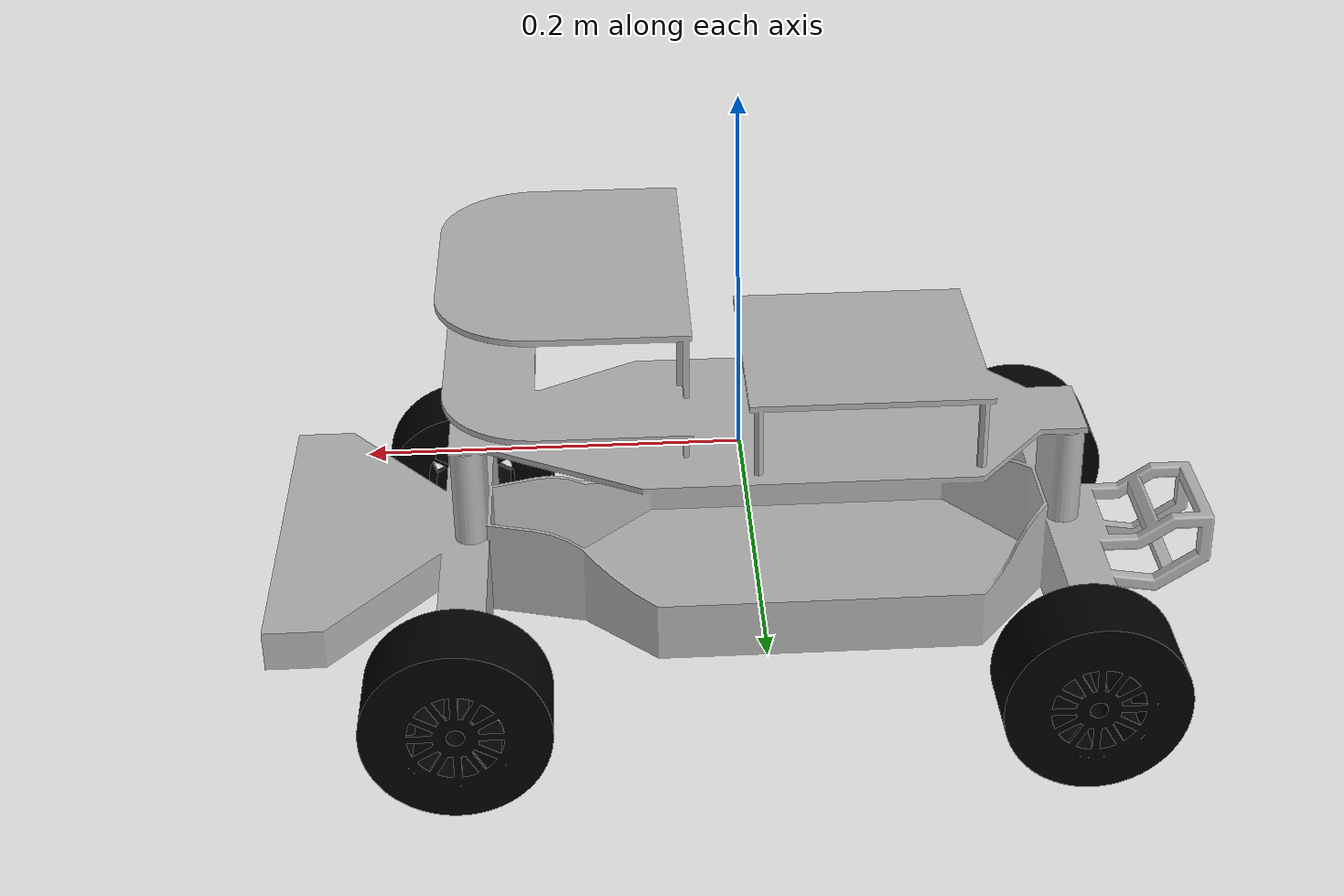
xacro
<?xml version="1.0"?>
<robot name="roscontrol"
  xmlns:xacro="http://ros.org/wiki/xacro">

  <xacro:property name="width" value="0.2" />
  <xacro:property name="leglen" value="0.6" />
  <xacro:property name="polelen" value="0.2" />
  <xacro:property name="bodylen" value="0.6" />
  <xacro:property name="baselen" value="0.4" />
  <xacro:property name="wheeldiam" value="0.07" />
  <xacro:property name="pi" value="3.1415" />
  <xacro:property name="seperationWheelDist" value=".1215" />

  <xacro:include filename="$(find avc_urdf)/urdf/properties.xacro" />
  <xacro:include filename="$(find avc_urdf)/urdf/geometries.xacro" />

  <material name="blue">
    <color rgba="0 0 0.8 1"/>
  </material>

  <material name="black">
    <color rgba="0 0 0 1"/>
  </material>

  <material name="white">
    <color rgba="1 1 1 1"/>
  </material>

  <xacro:macro name="default_inertial" params="mass">
    <inertial>
      <mass value="${mass}" />
      <inertia ixx="1.0" ixy="0.0" ixz="0.0" iyy="1.0" iyz="0.0" izz="1.0" />
    </inertial>
  </xacro:macro>

  <link name="base_link">
    <visual>
      <geometry>
        <mesh filename="file:///$(find avc_urdf)/meshes/chassis2.DAE" scale="${chassisScale} ${chassisScale} ${chassisScale}"/>
      </geometry>
      <origin rpy="1.57 0 0" xyz="${chassisMeshXoffset} ${chassisMeshYoffset} ${chassisMeshZoffset}" />
    </visual>
    <collision>
      <geometry>
        <box size = "${chassisL} ${chassisW} ${chassisH} "/>
      </geometry>
    </collision>
    <xacro:default_inertial mass="10"/>
  </link>

  <xacro:macro name="wheel" params="prefix suffix fb lr">

    <link name="${prefix}_${suffix}_wheel">
      <visual>
        <xacro:wheel_mesh_geometry side="${prefix}"/>
        <material name="black" />
      </visual>
      <collision>
        <xacro:wheel_geometry />
      </collision>
      <xacro:default_inertial mass="1"/>
    </link>

    <joint name="${prefix}_${suffix}_wheel_joint" type="continuous">
      <axis xyz="0 1 0" rpy="0 0 0" />
      <parent link="base_link"/>
      <child link="${prefix}_${suffix}_wheel"/>
      <origin xyz="${fb} ${lr} -${wheeldiam/2+.05}" rpy="0 0 0"/>
    </joint>

    <!-- This block provides the simulator (Gazebo) with information on a few additional
    physical properties. See http://gazebosim.org/tutorials/?tut=ros_urdf for more-->
    <gazebo reference="${prefix}_${suffix}_wheel">
      <mu1 value="200.0"/>
      <mu2 value="100.0"/>
      <kp value="10000000.0" />
      <kd value="1.0" />
      <material>Gazebo/Grey</material>
    </gazebo>

    <!-- This block connects the wheel joint to an actuator (motor), which informs both
    simulation and visualization of the robot -->
    <transmission name="${prefix}_${suffix}_wheel_trans">
      <type>transmission_interface/SimpleTransmission</type>
      <actuator name="${prefix}_${suffix}_wheel_motor">
        <mechanicalReduction>1</mechanicalReduction>
      </actuator>
      <joint name="${prefix}_${suffix}_wheel_joint">
        <hardwareInterface>VelocityJointInterface</hardwareInterface>
      </joint>
    </transmission>

  </xacro:macro>

  <xacro:wheel prefix="right" suffix="front" fb="${frontWheelDist}" lr="${-seperationWheelDist}"/>
  <xacro:wheel prefix="left" suffix="front" fb="${frontWheelDist}" lr="${seperationWheelDist}"/>
  <xacro:wheel prefix="right" suffix="back" fb="${backWheelDist}" lr="${-seperationWheelDist}"/>
  <xacro:wheel prefix="left" suffix="back" fb="${backWheelDist}" lr="${seperationWheelDist}"/>

  <!-- Gazebo plugin for ROS Control -->
  <gazebo>
    <plugin name="gazebo_ros_control" filename="libgazebo_ros_control.so">
      <robotNamespace>/</robotNamespace>
    </plugin>
  </gazebo>

</robot>

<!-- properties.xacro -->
<robot xmlns:xacro="http://www.ros.org/wiki/xacro" name="mintaur">

    <!-- X axis direction is forward, Y axis direction is left -->

    <!-- ______________Chassis parameters__________________________ -->
    <xacro:property name="chassisL" value="0.51" />
    <xacro:property name="chassisW" value="0.2" />
    <xacro:property name="chassisH" value="0.15" />

    <xacro:property name="chassisMass" value="1"/>
    <xacro:property name="chassisIxx" value="0.4"/>
    <xacro:property name="chassisIxy" value="0.4"/>
    <xacro:property name="chassisIyy" value="0.4"/>
    <xacro:property name="chassisIxz" value="0.0"/>
    <xacro:property name="chassisIyz" value="0.0"/>
    <xacro:property name="chassisIzz" value="0.0"/>

    <xacro:property name="chassisScale" value="0.001"/>

    <xacro:property name="chassisMeshXoffset" value="-0.125"/>
    <xacro:property name="chassisMeshYoffset" value="-0.070"/>
    <xacro:property name="chassisMeshZoffset" value="-0.085"/>

    <!-- ______________Wheel parameters__________________________ -->
    <!-- Wheel Rotation Limits> -->
    <xacro:property name="llimit" value="-0.785" />
    <xacro:property name="ulimit" value="0.785" />

    <!-- Wheel Locations -->
    <xacro:property name="rightWheelDist" value="-.1215" />
    <xacro:property name="leftWheelDist" value=".1215" />
    <xacro:property name="frontWheelDist" value="0.1535" />
    <xacro:property name="backWheelDist" value="-0.1763" />

    <xacro:property name="wheelDrop" value="-0.075" />
    <xacro:property name="wheelScale" value="0.001"/>

    <xacro:property name="wheelMeshXoffset" value="0"/>
    <xacro:property name="wheelMeshYoffset" value="0.022"/>
    <xacro:property name="wheelMeshYoffsetLeft" value="-0.022"/>
    <xacro:property name="wheelMeshZoffset" value="0"/>

    <!-- Wheel Physical Propreties-->
    <xacro:property name="wheelThickness" value="0.043" />
    <xacro:property name="wheelRadius" value="0.05"/>
    <xacro:property name="axleEffort" value="0.001"/>
    <xacro:property name="axleVelocity" value="0.5"/>

    <xacro:property name="wheelMass" value="1"/>
    <xacro:property name="wheelIxx" value="0.4"/>
    <xacro:property name="wheelIyy" value="0.4"/>
    <xacro:property name="wheelIzz" value="0.4"/>
    <xacro:property name="wheelIxy" value="0.0"/>
    <xacro:property name="wheelIxz" value="0.0"/>
    <xacro:property name="wheelIyz" value="0.0"/>

    <!-- Wheel Gazebo and Inertial Properties -->
    <xacro:property name="wheelMu1" value="200"/>
    <xacro:property name="wheelMu2" value="100"/>
    <xacro:property name="wheelKp" value="10000000.0"/>
    <xacro:property name="wheelKd" value="1.0"/>

    <!-- ______________IMU parameters__________________________ -->
    <xacro:property name="imuL" value="0.064" />
    <xacro:property name="imuW" value="0.028" />
    <xacro:property name="imuH" value="0.007" />

    <xacro:property name="imuMass" value="0.1"/>
    <xacro:property name="imuIxx" value="0.4"/>
    <xacro:property name="imuIxy" value="0.4"/>
    <xacro:property name="imuIyy" value="0.4"/>
    <xacro:property name="imuIxz" value="0.4"/>
    <xacro:property name="imuIyz" value="0.4"/>
    <xacro:property name="imuIzz" value="0.4"/>

    <xacro:property name="imuXoffset" value="-0.077"/>
    <xacro:property name="imuYoffset" value="0.0"/>
    <xacro:property name="imuZoffset" value="0.077"/>

    <!-- __________________Random Values______________________ -->
    <xacro:property name="width" value="0.2" />
    <xacro:property name="leglen" value="0.6" />
    <xacro:property name="polelen" value="0.2" />
    <xacro:property name="bodylen" value="0.6" />
    <xacro:property name="baselen" value="0.4" />
    <xacro:property name="wheeldiam" value="0.07" />
    <xacro:property name="pis" value="3.1415" />
    <xacro:property name="seperationWheelDist" value=".1215" />

    <!-- ______________Lidar parameters__________________________ -->
    <xacro:property name="lidarThick" value="0.086" />
    <xacro:property name="lidarRadius" value="0.045" />

    <xacro:property name="lidarXoffset" value="0.076"/>
    <xacro:property name="lidarYoffset" value="0.0"/>
    <xacro:property name="lidarZoffset" value="0.059"/>

    <xacro:property name="lidarMass" value="0.025"/>
    <xacro:property name="lidarIxx" value="${0.08333333*lidarMass*(3*lidarRadius*lidarRadius+lidarThick*lidarThick)}"/>
    <xacro:property name="lidarIxy" value="0.0"/>
    <xacro:property name="lidarIyy" value="${0.08333333*lidarMass*(3*lidarRadius*lidarRadius+lidarThick*lidarThick)}"/>
    <xacro:property name="lidarIxz" value="0.0"/>
    <xacro:property name="lidarIyz" value="0.0"/>
    <xacro:property name="lidarIzz" value="${0.5*lidarMass*(lidarRadius*lidarRadius)}"/>

</robot>

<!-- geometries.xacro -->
<robot xmlns:xacro="http://www.ros.org/wiki/xacro" name="mintaur">

    <xacro:macro name="chassis_mesh_geometry">
        <geometry>
            <mesh filename="file:///$(find avc_urdf)/meshes/chassis2.DAE" scale="${chassisScale} ${chassisScale} ${chassisScale}"/>
         </geometry>
         <origin rpy="1.57 0 0" xyz="${chassisMeshXoffset} ${chassisMeshYoffset} ${chassisMeshZoffset}" />
	</xacro:macro>

	<xacro:macro name="box_geometry">
       <geometry>
            <box size = "${chassisL} ${chassisW} ${chassisH} "/>
        </geometry>
	</xacro:macro>

    <xacro:macro name="wheel_mesh_geometry" params="side">
        <geometry>
            <mesh filename="file:///$(find avc_urdf)/meshes/wheels.DAE" scale="${wheelScale} ${wheelScale} ${wheelScale}"/>
         </geometry>
            <xacro:if value="${side =='right'}">
                <origin rpy="1.57 0 0" xyz="0 ${wheelMeshYoffset} 0" />
            </xacro:if>
            <xacro:if value="${side =='left'}">
                <origin rpy="1.57 0 3.14" xyz="${wheelMeshXoffset} ${wheelMeshYoffsetLeft} ${wheelMeshZoffset}" />
            </xacro:if>
	</xacro:macro>

    <xacro:macro name="wheel_geometry">
        <geometry>
            <cylinder length="${wheelThickness}" radius="${wheelRadius}"/>
        </geometry>
        <origin rpy="1.57075 0 0" xyz="0 0 0"/>
	</xacro:macro>

   <xacro:macro name="imu_geometry">
       <geometry>
            <box size = "${imuL} ${imuW} ${imuH} "/>
        </geometry>
    </xacro:macro>

    <xacro:macro name="lidar_geometry">
        <geometry>
            <cylinder length="${lidarThick}" radius="${lidarRadius}"/>
        </geometry>
        <origin rpy="0 0 0" xyz="0 0 0"/>
    </xacro:macro>

</robot>
